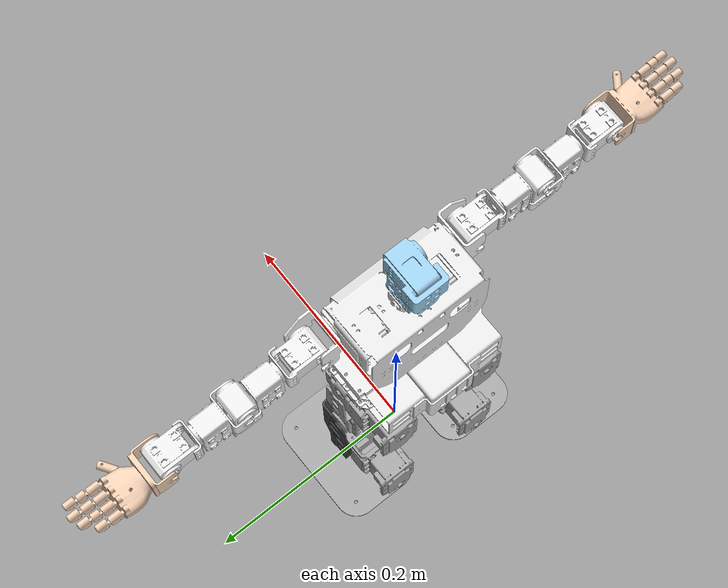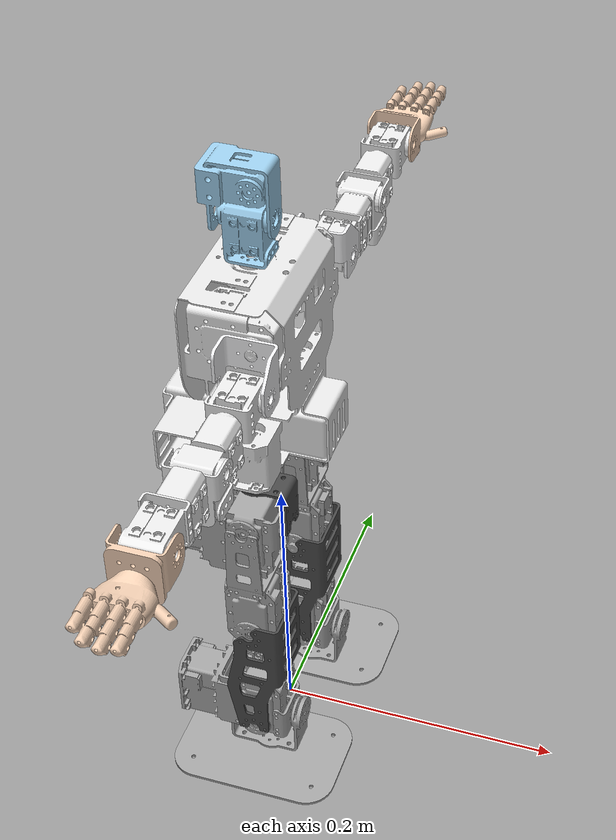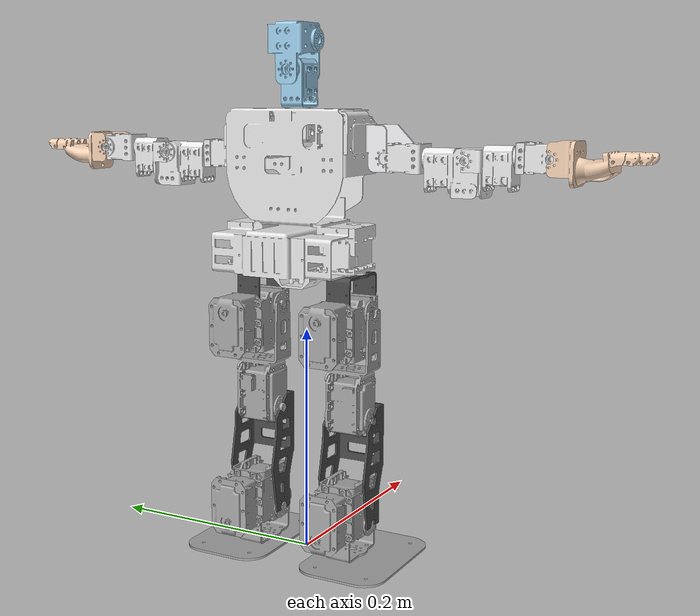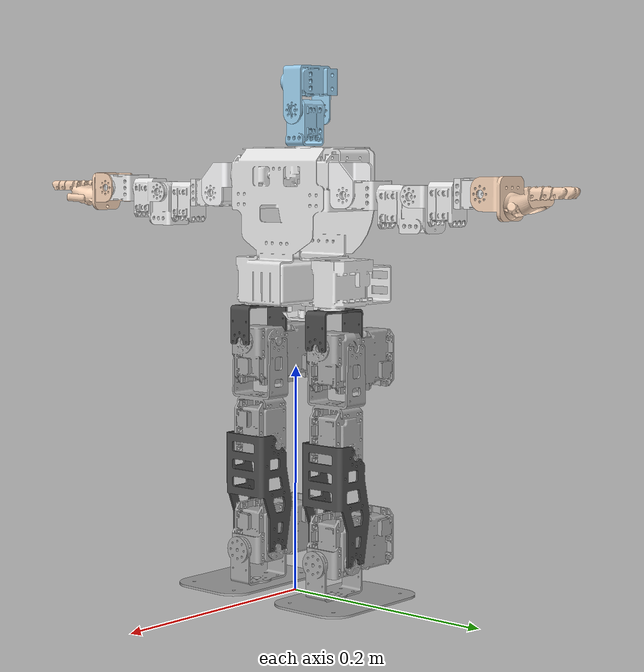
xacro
<?xml version="1.0"?>
<robot xmlns:xacro="http://www.ros.org/wiki/xacro" name="alfan_2025">
    <xacro:arg name="initial_positions_file" default="initial_positions.yaml" />

    <!-- Import alfan_2025 urdf file -->
    <xacro:include filename="$(find alfan_robot_description)/urdf/alfan.urdf" />

    <!-- Import control_xacro -->
    <xacro:include filename="alfan_2025.ros2_control.xacro" />

    <xacro:alfan_2025_ros2_control name="GazeboROS2" initial_positions_file="$(arg initial_positions_file)"/>

    <gazebo>
        <plugin filename="ign_ros2_control-system" name="ign_ros2_control::IgnitionROS2ControlPlugin">
            <parameters>$(find alfan_hardware)/config/ros2_controllers.yaml</parameters>
        </plugin>
    </gazebo>

    <gazebo reference="l_foot">
        <mu1>100.0</mu1>
        <mu2>100.0</mu2>
        <kp>1000000.0</kp>
        <kd>100.0</kd>
        <minDepth>0.001</minDepth>
    </gazebo>

    <gazebo reference="r_foot">
        <mu1>100.0</mu1>
        <mu2>100.0</mu2>
        <kp>1000000.0</kp>
        <kd>100.0</kd>
        <minDepth>0.001</minDepth>
    </gazebo>

    <gazebo reference="l_palm">
        <mu1>0.6</mu1>
        <mu2>0.6</mu2>
        <kp>1000000.0</kp>
        <kd>100.0</kd>
        <minDepth>0.0001</minDepth>
        <maxVel>0.01</maxVel>
    </gazebo>

    <gazebo reference="r_palm">
        <mu1>0.6</mu1>
        <mu2>0.6</mu2>
        <kp>1000000.0</kp>
        <kd>100.0</kd>
        <minDepth>0.0001</minDepth>
        <maxVel>0.01</maxVel>
    </gazebo>

</robot>

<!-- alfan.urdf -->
<!-- Generated using onshape-to-robot -->
<!-- Onshape https://cad.onshape.com/documents/8cbf7271d634c29c967e8abb/w/69ee037ca6e75b04c62f3a0c/e/52ef5a2e9e2916901e209032 -->
<robot name="alfan_2025">
  <!-- Dummy base link -->
  <link name="base_link"></link>

  <!-- Link body -->
  <link name="body">
    <inertial>
      <origin xyz="-0.0105931 4.03604e-06 0.306267" rpy="0 0 0"/>
      <mass value="0.757108"/>
      <inertia ixx="0.0023612" ixy="1.696e-07" ixz="-0.0001496" iyy="0.0020347" iyz="9.9759e-08" izz="0.001299"/>
    </inertial>
    <!-- Part body -->
    <collision>
      <origin xyz="-0.01425 7.7336e-05 0.272447" rpy="-1.5708 -3.07442e-13 -1.5708"/>
      <geometry>
        <box size="0.124687 0.0458965 0.113"/>
      </geometry>
    </collision>
    <collision>
      <origin xyz="-0.00707247 -1.8864e-05 0.343255" rpy="3.07442e-13 -1.17186e-15 3.14159"/>
      <geometry>
        <box size="0.0648476 0.123854 0.097"/>
      </geometry>
    </collision>
    <visual>
      <origin xyz="-0.00672007 3.60385e-08 0.297149" rpy="-3.07442e-13 1.17186e-15 -2.77556e-17"/>
      <geometry>
        <mesh filename="file://$(find alfan_robot_description)/meshes/body.stl"/>
      </geometry>
      <material name="body_material">
        <color rgba="0.901961 0.901961 0.901961 1"/>
      </material>
    </visual>
  </link>
  <!-- Dummy Joint -->
  <joint name="base_link_to_body" type="fixed">
    <parent link="base_link"/>
    <child link="body"/>
    <origin xyz="0 0 0" rpy="0 0 0"/>
  </joint>
  <!-- Link hip_connector -->
  <link name="hip_connector">
    <inertial>
      <origin xyz="-0.00277951 7.80388e-18 -0.00995004" rpy="0 0 0"/>
      <mass value="0.0123973"/>
      <inertia ixx="1.86779e-06" ixy="-3.87301e-38" ixz="3.27394e-09" iyy="6.45145e-06" iyz="-1.52389e-41" izz="5.69507e-06"/>
    </inertial>
    <!-- Part hip_connector -->
    <collision>
      <origin xyz="-0.0028777 -3.54e-05 -0.0175" rpy="0 -0 -4.65462e-33"/>
      <geometry>
        <box size="0.0506482 0.0270708 0.035"/>
      </geometry>
    </collision>
    <visual>
      <origin xyz="-0.00275 1.38778e-17 0" rpy="0 -0 -4.65462e-33"/>
      <geometry>
        <mesh filename="file://$(find alfan_robot_description)/meshes/hip_connector.stl"/>
      </geometry>
      <material name="hip_connector_material">
        <color rgba="0.286275 0.286275 0.286275 1"/>
      </material>
    </visual>
  </link>
  <!-- Link l_hip_mx28_block -->
  <link name="l_hip_mx28_block">
    <inertial>
      <origin xyz="-0.00016 -0.011201 0.00376704" rpy="0 0 0"/>
      <mass value="0.162255"/>
      <inertia ixx="0.0001198" ixy="5.23097e-07" ixz="1.8713e-07" iyy="0.000107" iyz="-3.18268e-06" izz="4.56093e-05"/>
    </inertial>
    <!-- Part l_hip_mx28_block -->
    <collision>
      <origin xyz="-0.00187095 -0.0135 0.00372199" rpy="-1.5708 -1.5708 0"/>
      <geometry>
        <box size="0.0859449 0.0423941 0.051"/>
      </geometry>
    </collision>
    <visual>
      <origin xyz="4.28609e-13 -0.033 0.02305" rpy="-1.5708 -1.5708 0"/>
      <geometry>
        <mesh filename="file://$(find alfan_robot_description)/meshes/l_hip_mx28_block.stl"/>
      </geometry>
      <material name="l_hip_mx28_block_material">
        <color rgba="0.647059 0.647059 0.647059 1"/>
      </material>
    </visual>
  </link>
  <!-- Link l_hip_to_knee -->
  <link name="l_hip_to_knee">
    <inertial>
      <origin xyz="-0.0729973 -3e-05 0.020308" rpy="0 0 0"/>
      <mass value="0.095285"/>
      <inertia ixx="2.11931e-05" ixy="5.3641e-08" ixz="-7.07684e-07" iyy="6.64994e-05" iyz="5.8e-10" izz="5.7043e-05"/>
    </inertial>
    <!-- Part l_hip_to_knee -->
    <collision>
      <origin xyz="-0.0518373 -3.65e-05 0.0204614" rpy="-1.5708 -4.02932e-25 1.5708"/>
      <geometry>
        <box size="0.03584 0.0455282 0.108"/>
      </geometry>
    </collision>
    <visual>
      <origin xyz="-0.105837 -2.3849e-12 0.019725" rpy="1.5708 4.06981e-33 1.5708"/>
      <geometry>
        <mesh filename="file://$(find alfan_robot_description)/meshes/l_hip_to_knee.stl"/>
      </geometry>
      <material name="l_hip_to_knee_material">
        <color rgba="0.647059 0.647059 0.647059 1"/>
      </material>
    </visual>
  </link>
  <!-- Link tibia -->
  <link name="tibia">
    <inertial>
      <origin xyz="-0.0358486 0.00695075 0.0205001" rpy="0 0 0"/>
      <mass value="0.0333977"/>
      <inertia ixx="1.79007e-05" ixy="-5.47445e-06" ixz="2.13089e-11" iyy="3.9967e-05" iyz="1.43552e-11" izz="3.1768e-05"/>
    </inertial>
    <!-- Part tibia -->
    <collision>
      <origin xyz="-0.042873 0.00195923 0.0205" rpy="3.14159 2.91878e-33 -1.5708"/>
      <geometry>
        <box size="0.039678 0.105746 0.045"/>
      </geometry>
    </collision>
    <visual>
      <origin xyz="0.01 0.0217982 -0.002" rpy="1.5708 -2.91878e-33 1.5708"/>
      <geometry>
        <mesh filename="file://$(find alfan_robot_description)/meshes/tibia.stl"/>
      </geometry>
      <material name="tibia_material">
        <color rgba="0.286275 0.286275 0.286275 1"/>
      </material>
    </visual>
  </link>
  <!-- Link l_ankle_mx28_block -->
  <link name="l_ankle_mx28_block">
    <inertial>
      <origin xyz="0.011201 -0.019283 0.019884" rpy="0 0 0"/>
      <mass value="0.162255"/>
      <inertia ixx="0.000107" ixy="3.18264e-06" ixz="-5.38414e-07" iyy="4.56127e-05" iyz="5.20429e-07" izz="0.0001198"/>
    </inertial>
    <!-- Part l_ankle_mx28_block -->
    <collision>
      <origin xyz="0.0135 -0.0203893 0.018783" rpy="-1.5708 -9.90737e-33 1.5708"/>
      <geometry>
        <box size="0.0840214 0.0432827 0.051"/>
      </geometry>
    </collision>
    <visual>
      <origin xyz="-0.012 1.32359e-15 0.019175" rpy="1.5708 -9.90737e-33 1.5708"/>
      <geometry>
        <mesh filename="file://$(find alfan_robot_description)/meshes/l_ankle_mx28_block.stl"/>
      </geometry>
      <material name="l_ankle_mx28_block_material">
        <color rgba="0.647059 0.647059 0.647059 1"/>
      </material>
    </visual>
  </link>
  <!-- Link l_foot -->
  <link name="l_foot">
    <inertial>
      <origin xyz="0.010143 -0.0297122 0.026035" rpy="0 0 0"/>
      <mass value="0.063842"/>
      <inertia ixx="6.67616e-05" ixy="1.99819e-06" ixz="5.08308e-07" iyy="9.01027e-05" iyz="-1.50019e-06" izz="3.19302e-05"/>
    </inertial>
    <!-- Part l_foot -->
    <collision>
      <origin xyz="-0.0001003 -0.0100062 0.027" rpy="3.14159 1.74306e-33 8.49968e-30"/>
      <geometry>
        <box size="0.0221666 0.0438909 0.054"/>
      </geometry>
    </collision>
    <collision>
      <origin xyz="0.0129662 -0.0322982 0.0252505" rpy="1.5708 -1.5708 0"/>
      <geometry>
        <box size="0.120001 0.0800676 0.003"/>
      </geometry>
    </collision>
    <visual>
      <origin xyz="0.013 -0.0317982 0.02525" rpy="-1.5708 -1.5708 0"/>
      <geometry>
        <mesh filename="file://$(find alfan_robot_description)/meshes/l_foot.stl"/>
      </geometry>
      <material name="l_foot_material">
        <color rgba="0.647059 0.647059 0.647059 1"/>
      </material>
    </visual>
  </link>
  <!-- Joint from l_ankle_mx28_block to l_foot -->
  <joint name="l_ankle_roll" type="revolute">
    <origin xyz="3.07393e-14 -0.02305 0.01995" rpy="-1.5708 -1.5708 0"/>
    <parent link="l_ankle_mx28_block"/>
    <child link="l_foot"/>
    <axis xyz="0 0 1"/>
    <limit effort="10" velocity="10" lower="-0.375246" upper="0.375246"/>
  </joint>
  <!-- Joint from tibia to l_ankle_mx28_block -->
  <joint name="l_ankle_pitch" type="revolute">
    <origin xyz="-0.093 4.21538e-16 1.04083e-17" rpy="2.06189e-29 -1.51461e-28 5.55112e-17"/>
    <parent link="tibia"/>
    <child link="l_ankle_mx28_block"/>
    <axis xyz="0 0 1"/>
    <limit effort="10" velocity="10" lower="-1.5708" upper="1.22173"/>
  </joint>
  <!-- Joint from l_hip_to_knee to tibia -->
  <joint name="l_knee" type="revolute">
    <origin xyz="-0.0938373 -2.02966e-12 0.000550036" rpy="1.01253e-24 -1.62064e-26 5.55112e-17"/>
    <parent link="l_hip_to_knee"/>
    <child link="tibia"/>
    <axis xyz="0 0 1"/>
    <limit effort="10" velocity="10" lower="0" upper="2.61799"/>
  </joint>
  <!-- Joint from l_hip_mx28_block to l_hip_to_knee -->
  <joint name="l_hip_pitch" type="revolute">
    <origin xyz="-0.01995 -6.07486e-13 0.02305" rpy="1.5708 6.4443e-19 1.5708"/>
    <parent link="l_hip_mx28_block"/>
    <child link="l_hip_to_knee"/>
    <axis xyz="0 0 1"/>
    <limit effort="10" velocity="10" lower="-2.35619" upper="0.497419"/>
  </joint>
  <!-- Joint from hip_connector to l_hip_mx28_block -->
  <joint name="l_hip_roll" type="revolute">
    <origin xyz="-0.028 0 -0.0317982" rpy="1.5708 -0 1.5708"/>
    <parent link="hip_connector"/>
    <child link="l_hip_mx28_block"/>
    <axis xyz="0 0 1"/>
    <limit effort="10" velocity="10" lower="-0.375246" upper="0.375246"/>
  </joint>
  <!-- Joint from body to hip_connector -->
  <joint name="l_hip_yaw" type="revolute">
    <origin xyz="0.00275 0.0444 0.252434" rpy="-3.07436e-13 1.17478e-15 -1.33488e-16"/>
    <parent link="body"/>
    <child link="hip_connector"/>
    <axis xyz="0 0 1"/>
    <limit effort="10" velocity="10" lower="-0.523599" upper="0.523599"/>
  </joint>
  <!-- Link hip_connector_2 -->
  <link name="hip_connector_2">
    <inertial>
      <origin xyz="-0.00277951 7.80388e-18 -0.00995004" rpy="0 0 0"/>
      <mass value="0.0123973"/>
      <inertia ixx="1.86779e-06" ixy="-2.13752e-41" ixz="3.27394e-09" iyy="6.45145e-06" iyz="1.52686e-44" izz="5.69507e-06"/>
    </inertial>
    <!-- Part hip_connector_2 -->
    <collision>
      <origin xyz="-0.0028777 -3.54e-05 -0.0175" rpy="0 -0 4.66366e-36"/>
      <geometry>
        <box size="0.0506482 0.0270708 0.035"/>
      </geometry>
    </collision>
    <visual>
      <origin xyz="-0.00275 1.38778e-17 0" rpy="0 -0 4.66366e-36"/>
      <geometry>
        <mesh filename="file://$(find alfan_robot_description)/meshes/hip_connector.stl"/>
      </geometry>
      <material name="hip_connector_2_material">
        <color rgba="0.286275 0.286275 0.286275 1"/>
      </material>
    </visual>
  </link>
  <!-- Link r_hip_mx28_block -->
  <link name="r_hip_mx28_block">
    <inertial>
      <origin xyz="6.6e-05 -0.011201 0.00376704" rpy="0 0 0"/>
      <mass value="0.162255"/>
      <inertia ixx="0.0001198" ixy="-5.38417e-07" ixz="-5.20431e-07" iyy="0.000107" iyz="-3.18268e-06" izz="4.56127e-05"/>
    </inertial>
    <!-- Part r_hip_mx28_block -->
    <collision>
      <origin xyz="0.00125805 -0.0135 0.00381494" rpy="-1.5708 -1.5708 0"/>
      <geometry>
        <box size="0.086166 0.0433161 0.051"/>
      </geometry>
    </collision>
    <visual>
      <origin xyz="3.29597e-15 -0.033 0.02305" rpy="-1.5708 -1.5708 0"/>
      <geometry>
        <mesh filename="file://$(find alfan_robot_description)/meshes/r_hip_mx28_block.stl"/>
      </geometry>
      <material name="r_hip_mx28_block_material">
        <color rgba="0.647059 0.647059 0.647059 1"/>
      </material>
    </visual>
  </link>
  <!-- Link r_hip_to_knee -->
  <link name="r_hip_to_knee">
    <inertial>
      <origin xyz="-0.0729973 -3e-05 -0.020307" rpy="0 0 0"/>
      <mass value="0.095285"/>
      <inertia ixx="2.11931e-05" ixy="5.3642e-08" ixz="7.07509e-07" iyy="6.64994e-05" iyz="-5.07e-10" izz="5.7043e-05"/>
    </inertial>
    <!-- Part r_hip_to_knee -->
    <collision>
      <origin xyz="-0.0518373 -2.43e-05 -0.0202786" rpy="-1.5708 -1.55463e-36 1.5708"/>
      <geometry>
        <box size="0.03584 0.0455282 0.108"/>
      </geometry>
    </collision>
    <visual>
      <origin xyz="-0.105837 3.20526e-13 -0.019725" rpy="1.5708 -1.55463e-36 1.5708"/>
      <geometry>
        <mesh filename="file://$(find alfan_robot_description)/meshes/r_hip_to_knee.stl"/>
      </geometry>
      <material name="r_hip_to_knee_material">
        <color rgba="0.647059 0.647059 0.647059 1"/>
      </material>
    </visual>
  </link>
  <!-- Link tibia_2 -->
  <link name="tibia_2">
    <inertial>
      <origin xyz="-0.0358486 0.00695075 -0.0204999" rpy="0 0 0"/>
      <mass value="0.0333977"/>
      <inertia ixx="1.79007e-05" ixy="-5.47445e-06" ixz="2.13089e-11" iyy="3.9967e-05" iyz="1.43552e-11" izz="3.1768e-05"/>
    </inertial>
    <!-- Part tibia_2 -->
    <collision>
      <origin xyz="-0.042873 0.00195923 -0.0205" rpy="3.14159 1.55484e-36 -1.5708"/>
      <geometry>
        <box size="0.039678 0.105746 0.045"/>
      </geometry>
    </collision>
    <visual>
      <origin xyz="0.01 0.0217982 -0.043" rpy="1.5708 -1.55484e-36 1.5708"/>
      <geometry>
        <mesh filename="file://$(find alfan_robot_description)/meshes/tibia.stl"/>
      </geometry>
      <material name="tibia_2_material">
        <color rgba="0.286275 0.286275 0.286275 1"/>
      </material>
    </visual>
  </link>
  <!-- Link r_ankle_mx28_block -->
  <link name="r_ankle_mx28_block">
    <inertial>
      <origin xyz="0.011201 -0.019283 -0.01979" rpy="0 0 0"/>
      <mass value="0.162255"/>
      <inertia ixx="0.000107" ixy="3.18264e-06" ixz="5.231e-07" iyy="4.56093e-05" iyz="-1.8713e-07" izz="0.0001198"/>
    </inertial>
    <!-- Part r_ankle_mx28_block -->
    <collision>
      <origin xyz="0.0135 -0.0202893 -0.0185994" rpy="-1.5708 -1.55505e-36 1.5708"/>
      <geometry>
        <box size="0.0840214 0.0432827 0.051"/>
      </geometry>
    </collision>
    <visual>
      <origin xyz="-0.012 -1.76395e-14 -0.019175" rpy="1.5708 -1.55505e-36 1.5708"/>
      <geometry>
        <mesh filename="file://$(find alfan_robot_description)/meshes/r_ankle_mx28_block.stl"/>
      </geometry>
      <material name="r_ankle_mx28_block_material">
        <color rgba="0.647059 0.647059 0.647059 1"/>
      </material>
    </visual>
  </link>
  <!-- Link r_foot -->
  <link name="r_foot">
    <inertial>
      <origin xyz="-0.010143 -0.0297122 0.026035" rpy="0 0 0"/>
      <mass value="0.063842"/>
      <inertia ixx="6.67616e-05" ixy="-1.99819e-06" ixz="-5.08308e-07" iyy="9.01027e-05" iyz="-1.50019e-06" izz="3.19302e-05"/>
    </inertial>
    <!-- Part r_foot -->
    <collision>
      <origin xyz="-0.00010026 -0.00985348 0.027" rpy="-3.14159 -1.56879e-36 1.70934e-29"/>
      <geometry>
        <box size="0.0221666 0.0438909 0.054"/>
      </geometry>
    </collision>
    <collision>
      <origin xyz="-0.0130338 -0.0322982 0.0252494" rpy="1.5708 -1.5708 0"/>
      <geometry>
        <box size="0.120001 0.0800676 0.003"/>
      </geometry>
    </collision>
    <visual>
      <origin xyz="-0.013 -0.0337982 0.02525" rpy="-1.5708 -1.5708 0"/>
      <geometry>
        <mesh filename="file://$(find alfan_robot_description)/meshes/r_foot.stl"/>
      </geometry>
      <material name="r_foot_material">
        <color rgba="0.647059 0.647059 0.647059 1"/>
      </material>
    </visual>
  </link>
  <!-- Joint from r_ankle_mx28_block to r_foot -->
  <joint name="r_ankle_roll" type="revolute">
    <origin xyz="6.0292e-14 -0.02305 -0.01995" rpy="-1.5708 -1.5708 0"/>
    <parent link="r_ankle_mx28_block"/>
    <child link="r_foot"/>
    <axis xyz="0 0 1"/>
    <limit effort="10" velocity="10" lower="-0.375246" upper="0.375246"/>
  </joint>
  <!-- Joint from tibia_2 to r_ankle_mx28_block -->
  <joint name="r_ankle_pitch" type="revolute">
    <origin xyz="-0.093 -3.90313e-18 -3.46945e-18" rpy="1.55505e-36 -0 6.88016e-28"/>
    <parent link="tibia_2"/>
    <child link="r_ankle_mx28_block"/>
    <axis xyz="0 0 1"/>
    <limit effort="10" velocity="10" lower="-1.5708" upper="1.22173"/>
  </joint>
  <!-- Joint from r_hip_to_knee to tibia_2 -->
  <joint name="r_knee" type="revolute">
    <origin xyz="-0.0938373 3.16515e-13 -0.000550036" rpy="1.55484e-36 -0 6.88002e-28"/>
    <parent link="r_hip_to_knee"/>
    <child link="tibia_2"/>
    <axis xyz="0 0 1"/>
    <limit effort="10" velocity="10" lower="0" upper="2.61799"/>
  </joint>
  <!-- Joint from r_hip_mx28_block to r_hip_to_knee -->
  <joint name="r_hip_pitch" type="revolute">
    <origin xyz="0.01995 1.33227e-15 0.02305" rpy="1.5708 -6.88016e-28 1.5708"/>
    <parent link="r_hip_mx28_block"/>
    <child link="r_hip_to_knee"/>
    <axis xyz="0 0 1"/>
    <limit effort="10" velocity="10" lower="-2.35619" upper="0.497419"/>
  </joint>
  <!-- Joint from hip_connector_2 to r_hip_mx28_block -->
  <joint name="r_hip_roll" type="revolute">
    <origin xyz="-0.028 -6.93889e-18 -0.0317982" rpy="1.5708 -0 1.5708"/>
    <parent link="hip_connector_2"/>
    <child link="r_hip_mx28_block"/>
    <axis xyz="0 0 1"/>
    <limit effort="10" velocity="10" lower="-0.375246" upper="0.375246"/>
  </joint>
  <!-- Joint from body to hip_connector_2 -->
  <joint name="r_hip_yaw" type="revolute">
    <origin xyz="0.00275 -0.0444 0.252434" rpy="-3.07442e-13 1.51693e-23 -2.77556e-17"/>
    <parent link="body"/>
    <child link="hip_connector_2"/>
    <axis xyz="0 0 1"/>
    <limit effort="10" velocity="10" lower="-0.523599" upper="0.523599"/>
  </joint>
  <!-- Link neck -->
  <link name="neck">
    <inertial>
      <origin xyz="0.00136 -8.88178e-18 0.022729" rpy="0 0 0"/>
      <mass value="0.029997"/>
      <inertia ixx="4.71486e-06" ixy="1.22882e-38" ixz="-5.82106e-07" iyy="6.98074e-06" iyz="4.59034e-40" izz="4.23785e-06"/>
    </inertial>
    <!-- Part neck -->
    <collision>
      <origin xyz="-0.0035 1.68e-05 0.0199735" rpy="1.5708 -0 1.5708"/>
      <geometry>
        <box size="0.0240336 0.039947 0.031"/>
      </geometry>
    </collision>
    <visual>
      <origin xyz="2.60209e-17 -8.88178e-18 0" rpy="0 -0 -7.88575e-34"/>
      <geometry>
        <mesh filename="file://$(find alfan_robot_description)/meshes/neck.stl"/>
      </geometry>
      <material name="neck_material">
        <color rgba="0.615686 0.811765 0.929412 1"/>
      </material>
    </visual>
  </link>
  <!-- Link head_to_face -->
  <link name="head_to_face">
    <inertial>
      <origin xyz="-5.9e-05 0.023127 -0.019603" rpy="0 0 0"/>
      <mass value="0.035939"/>
      <inertia ixx="1.1264e-05" ixy="2.909e-09" ixz="2.7952e-08" iyy="9.50806e-06" iyz="-7.907e-09" izz="6.36767e-06"/>
    </inertial>
    <!-- Part head_to_face -->
    <collision>
      <origin xyz="6e-06 0.01326 -0.02" rpy="0 -2.29291e-33 0"/>
      <geometry>
        <box size="0.032099 0.0505201 0.044"/>
      </geometry>
    </collision>
    <visual>
      <origin xyz="-4.75175e-16 0.01125 0.002" rpy="-1.5708 -1.5708 0"/>
      <geometry>
        <mesh filename="file://$(find alfan_robot_description)/meshes/head_to_face.stl"/>
      </geometry>
      <material name="head_to_face_material">
        <color rgba="0.615686 0.811765 0.929412 1"/>
      </material>
    </visual>
  </link>
  <!-- Joint from neck to head_to_face -->
  <joint name="head_roll" type="revolute">
    <origin xyz="0.015 -1.15463e-16 0.03092" rpy="1.5708 -0 1.5708"/>
    <parent link="neck"/>
    <child link="head_to_face"/>
    <axis xyz="0 0 1"/>
    <limit effort="10" velocity="10" lower="-0.785398" upper="0.785398"/>
  </joint>
  <!-- Joint from body to neck -->
  <joint name="head_yaw" type="revolute">
    <origin xyz="-0.011357 3.60385e-08 0.392755" rpy="-3.07442e-13 1.17186e-15 -2.77556e-17"/>
    <parent link="body"/>
    <child link="neck"/>
    <axis xyz="0 0 1"/>
    <limit effort="10" velocity="10" lower="-0.523599" upper="0.523599"/>
  </joint>
  <!-- Link l_shoulder_connector -->
  <link name="l_shoulder_connector">
    <inertial>
      <origin xyz="-0.00492402 0.00182592 0.00882478" rpy="0 0 0"/>
      <mass value="0.0111142"/>
      <inertia ixx="3.10963e-06" ixy="1.67756e-07" ixz="2.99732e-07" iyy="1.7787e-06" iyz="-2.9848e-07" izz="3.55567e-06"/>
    </inertial>
    <!-- Part l_shoulder_connector -->
    <collision>
      <origin xyz="-0.0079632 -5e-05 0.0144362" rpy="-1.5708 -1.5708 0"/>
      <geometry>
        <box size="0.0290724 0.0380736 0.036"/>
      </geometry>
    </collision>
    <visual>
      <origin xyz="0 -0.002 0.002" rpy="1.5708 2.35489e-33 1.5708"/>
      <geometry>
        <mesh filename="file://$(find alfan_robot_description)/meshes/l_shoulder_connector.stl"/>
      </geometry>
      <material name="l_shoulder_connector_material">
        <color rgba="0.956863 0.956863 0.964706 1"/>
      </material>
    </visual>
  </link>
  <!-- Link l_arm_pitch -->
  <link name="l_arm_pitch">
    <inertial>
      <origin xyz="0.010014 -5.55112e-17 -0.014552" rpy="0 0 0"/>
      <mass value="0.020676"/>
      <inertia ixx="2.07658e-06" ixy="-4.13326e-35" ixz="1.42906e-07" iyy="3.83423e-06" iyz="1.42553e-36" izz="3.37951e-06"/>
    </inertial>
    <!-- Part l_arm_pitch -->
    <collision>
      <origin xyz="0.01 1.705e-05 -0.0143061" rpy="-5.52203e-30 1.5708 0"/>
      <geometry>
        <box size="0.0286122 0.0240341 0.038"/>
      </geometry>
    </collision>
    <visual>
      <origin xyz="0 -5.55112e-17 0" rpy="-1.5708 -1.5708 0"/>
      <geometry>
        <mesh filename="file://$(find alfan_robot_description)/meshes/l_arm_pitch.stl"/>
      </geometry>
      <material name="l_arm_pitch_material">
        <color rgba="0.917647 0.917647 0.917647 1"/>
      </material>
    </visual>
  </link>
  <!-- Link l_elbow_block -->
  <link name="l_elbow_block">
    <inertial>
      <origin xyz="-0.007839 -0.000148 0.027949" rpy="0 0 0"/>
      <mass value="0.040594"/>
      <inertia ixx="9.85967e-06" ixy="-1.732e-08" ixz="3.73451e-07" iyy="1.1591e-05" iyz="7.2352e-08" izz="6.06525e-06"/>
    </inertial>
    <!-- Part l_elbow_block -->
    <collision>
      <origin xyz="-0.0105 -0.0011352 0.0260343" rpy="1.5708 -6.7639e-35 1.5708"/>
      <geometry>
        <box size="0.0312596 0.0520685 0.039"/>
      </geometry>
    </collision>
    <visual>
      <origin xyz="5.55112e-17 0 0" rpy="1.5708 -6.7639e-35 1.5708"/>
      <geometry>
        <mesh filename="file://$(find alfan_robot_description)/meshes/l_elbow_block.stl"/>
      </geometry>
      <material name="l_elbow_block_material">
        <color rgba="0.917647 0.917647 0.917647 1"/>
      </material>
    </visual>
  </link>
  <!-- Link l_wrist_roll -->
  <link name="l_wrist_roll">
    <inertial>
      <origin xyz="0.022352 -0.004532 -0.015165" rpy="0 0 0"/>
      <mass value="0.023692"/>
      <inertia ixx="3.64251e-06" ixy="-1.77956e-07" ixz="1.72916e-07" iyy="3.76317e-06" iyz="-3.0555e-08" izz="4.46509e-06"/>
    </inertial>
    <!-- Part l_wrist_roll -->
    <collision>
      <origin xyz="0.0159225 -0.009 -0.0154574" rpy="-1.5708 -1.5708 0"/>
      <geometry>
        <box size="0.0340473 0.0499962 0.042"/>
      </geometry>
    </collision>
    <visual>
      <origin xyz="0.026 0.012 -0.01545" rpy="-1.5708 -1.5708 0"/>
      <geometry>
        <mesh filename="file://$(find alfan_robot_description)/meshes/l_wrist_roll.stl"/>
      </geometry>
      <material name="l_wrist_roll_material">
        <color rgba="0.917647 0.917647 0.917647 1"/>
      </material>
    </visual>
  </link>
  <!-- Link l_wrist_pitch -->
  <link name="l_wrist_pitch">
    <inertial>
      <origin xyz="-8.7777e-16 0.000948 0.018986" rpy="0 0 0"/>
      <mass value="0.020676"/>
      <inertia ixx="3.83423e-06" ixy="-2.49645e-36" ixz="3.2453e-35" iyy="3.37951e-06" iyz="-1.42906e-07" izz="2.07658e-06"/>
    </inertial>
    <!-- Part l_wrist_pitch -->
    <collision>
      <origin xyz="1.705e-05 -0.00015245 0.019" rpy="-3.14159 8.86898e-33 1.5708"/>
      <geometry>
        <box size="0.0312241 0.0240341 0.038"/>
      </geometry>
    </collision>
    <visual>
      <origin xyz="0.0105 0.0005 0.02" rpy="1.5708 8.86898e-33 1.5708"/>
      <geometry>
        <mesh filename="file://$(find alfan_robot_description)/meshes/l_wrist_pitch.stl"/>
      </geometry>
      <material name="l_wrist_pitch_material">
        <color rgba="0.917647 0.917647 0.917647 1"/>
      </material>
    </visual>
  </link>
  <!-- Link l_palm -->
  <link name="l_palm">
    <inertial>
      <origin xyz="0.028438 -0.00286142 -0.013578" rpy="0 0 0"/>
      <mass value="0.024199"/>
      <inertia ixx="4.40532e-06" ixy="-2.07142e-07" ixz="-1.64935e-07" iyy="1.14535e-05" iyz="1.47738e-07" izz="9.62956e-06"/>
    </inertial>
    <!-- Part l_palm -->
    <collision>
      <origin xyz="0.034 -0.00800591 -0.0152979" rpy="3.14159 1.5708 0"/>
      <geometry>
        <box size="0.0374329 0.0262008 0.086"/>
      </geometry>
    </collision>
    <visual>
      <origin xyz="0.017247 0.0139456 -0.01545" rpy="-1.5708 -1.5708 0"/>
      <geometry>
        <mesh filename="file://$(find alfan_robot_description)/meshes/l_palm.stl"/>
      </geometry>
      <material name="l_palm_material">
        <color rgba="0.952941 0.815686 0.705882 1"/>
      </material>
    </visual>
  </link>
  <!-- Joint from l_wrist_pitch to l_palm -->
  <joint name="l_hand_36" type="revolute">
    <origin xyz="-9.4369e-16 0.0154 0.029" rpy="-1.5708 -1.5708 0"/>
    <parent link="l_wrist_pitch"/>
    <child link="l_palm"/>
    <axis xyz="0 0 1"/>
    <limit effort="10" velocity="10" lower="-1.7017" upper="1.7017"/>
  </joint>
  <!-- Joint from l_wrist_roll to l_wrist_pitch -->
  <joint name="l_hand_35" type="revolute">
    <origin xyz="0.0409 0.003 -0.01545" rpy="1.5708 -6.82466e-16 1.5708"/>
    <parent link="l_wrist_roll"/>
    <child link="l_wrist_pitch"/>
    <axis xyz="0 0 1"/>
    <limit effort="10" velocity="10" lower="-3.14159" upper="3.14159"/>
  </joint>
  <!-- Joint from l_elbow_block to l_wrist_roll -->
  <joint name="l_hand_34" type="revolute">
    <origin xyz="3.10862e-15 0.0144 0.04" rpy="-1.5708 -1.5708 0"/>
    <parent link="l_elbow_block"/>
    <child link="l_wrist_roll"/>
    <axis xyz="0 0 1"/>
    <limit effort="10" velocity="10" lower="0" upper="2.0944"/>
  </joint>
  <!-- Joint from l_arm_pitch to l_elbow_block -->
  <joint name="l_hand_33" type="revolute">
    <origin xyz="0.029 -5.67324e-14 -0.0145" rpy="1.5708 3.4138e-28 1.5708"/>
    <parent link="l_arm_pitch"/>
    <child link="l_elbow_block"/>
    <axis xyz="0 0 1"/>
    <limit effort="10" velocity="10" lower="-3.14159" upper="3.14159"/>
  </joint>
  <!-- Joint from l_shoulder_connector to l_arm_pitch -->
  <joint name="l_hand_32" type="revolute">
    <origin xyz="-0.016 0.01595 0.018" rpy="-1.5708 -1.5708 0"/>
    <parent link="l_shoulder_connector"/>
    <child link="l_arm_pitch"/>
    <axis xyz="0 0 1"/>
    <limit effort="10" velocity="10" lower="-2.61799" upper="1.5708"/>
  </joint>
  <!-- Joint from body to l_shoulder_connector -->
  <joint name="l_hand_31" type="revolute">
    <origin xyz="0.00996904 0.058983 0.367555" rpy="-1.5708 -1.5708 0"/>
    <parent link="body"/>
    <child link="l_shoulder_connector"/>
    <axis xyz="0 0 1"/>
    <limit effort="10" velocity="10" lower="-3.14159" upper="3.14159"/>
  </joint>
  <!-- Link r_shoulder_connector -->
  <link name="r_shoulder_connector">
    <inertial>
      <origin xyz="-0.00492402 0.00182592 -0.00882478" rpy="0 0 0"/>
      <mass value="0.0111142"/>
      <inertia ixx="3.10963e-06" ixy="1.67756e-07" ixz="-2.99732e-07" iyy="1.7787e-06" iyz="2.9848e-07" izz="3.55567e-06"/>
    </inertial>
    <!-- Part r_shoulder_connector -->
    <collision>
      <origin xyz="-0.00804575 -5e-05 -0.0145381" rpy="-1.5708 1.5708 0"/>
      <geometry>
        <box size="0.0290761 0.0380915 0.036"/>
      </geometry>
    </collision>
    <visual>
      <origin xyz="0 0 0" rpy="1.5708 5.98425e-42 1.5708"/>
      <geometry>
        <mesh filename="file://$(find alfan_robot_description)/meshes/r_shoulder_connector.stl"/>
      </geometry>
      <material name="r_shoulder_connector_material">
        <color rgba="0.956863 0.956863 0.964706 1"/>
      </material>
    </visual>
  </link>
  <!-- Link r_arm_pitch -->
  <link name="r_arm_pitch">
    <inertial>
      <origin xyz="-0.010014 0 -0.014552" rpy="0 0 0"/>
      <mass value="0.020676"/>
      <inertia ixx="2.07658e-06" ixy="0" ixz="-1.42906e-07" iyy="3.83423e-06" iyz="0" izz="3.37951e-06"/>
    </inertial>
    <!-- Part r_arm_pitch -->
    <collision>
      <origin xyz="-0.01 1.705e-05 -0.0142939" rpy="-0 -1.5708 0"/>
      <geometry>
        <box size="0.0286122 0.0240341 0.038"/>
      </geometry>
    </collision>
    <visual>
      <origin xyz="0 0 0" rpy="-1.5708 -1.5708 0"/>
      <geometry>
        <mesh filename="file://$(find alfan_robot_description)/meshes/r_arm_pitch.stl"/>
      </geometry>
      <material name="r_arm_pitch_material">
        <color rgba="0.917647 0.917647 0.917647 1"/>
      </material>
    </visual>
  </link>
  <!-- Link r_elbow_block -->
  <link name="r_elbow_block">
    <inertial>
      <origin xyz="-0.007839 0.000295 -0.027949" rpy="0 0 0"/>
      <mass value="0.040594"/>
      <inertia ixx="9.863e-06" ixy="-4.0323e-08" ixz="-3.73451e-07" iyy="1.1591e-05" iyz="1.44112e-07" izz="6.06857e-06"/>
    </inertial>
    <!-- Part r_elbow_block -->
    <collision>
      <origin xyz="-0.0105 -0.0011387 -0.0259942" rpy="1.5708 -0 1.5708"/>
      <geometry>
        <box size="0.0311226 0.0520685 0.039"/>
      </geometry>
    </collision>
    <visual>
      <origin xyz="-0.0225 7.36564e-15 -0.015" rpy="1.5708 -0 1.5708"/>
      <geometry>
        <mesh filename="file://$(find alfan_robot_description)/meshes/r_elbow_block.stl"/>
      </geometry>
      <material name="r_elbow_block_material">
        <color rgba="0.917647 0.917647 0.917647 1"/>
      </material>
    </visual>
  </link>
  <!-- Link r_wrist_roll -->
  <link name="r_wrist_roll">
    <inertial>
      <origin xyz="-0.022352 -0.004532 -0.015165" rpy="0 0 0"/>
      <mass value="0.023692"/>
      <inertia ixx="3.64251e-06" ixy="1.77956e-07" ixz="-1.72916e-07" iyy="3.76317e-06" iyz="-3.0555e-08" izz="4.46509e-06"/>
    </inertial>
    <!-- Part r_wrist_roll -->
    <collision>
      <origin xyz="-0.0160028 -0.009 -0.0154237" rpy="-1.5708 -1.5708 0"/>
      <geometry>
        <box size="0.0340473 0.0501498 0.042"/>
      </geometry>
    </collision>
    <visual>
      <origin xyz="-0.026 0.012 -0.01545" rpy="-1.5708 -1.5708 0"/>
      <geometry>
        <mesh filename="file://$(find alfan_robot_description)/meshes/r_wrist_roll.stl"/>
      </geometry>
      <material name="r_wrist_roll_material">
        <color rgba="0.917647 0.917647 0.917647 1"/>
      </material>
    </visual>
  </link>
  <!-- Link r_wrist_pitch -->
  <link name="r_wrist_pitch">
    <inertial>
      <origin xyz="-1.00614e-15 0.000948 -0.018986" rpy="0 0 0"/>
      <mass value="0.020676"/>
      <inertia ixx="3.83423e-06" ixy="0" ixz="0" iyy="3.37951e-06" iyz="1.42906e-07" izz="2.07658e-06"/>
    </inertial>
    <!-- Part r_wrist_pitch -->
    <collision>
      <origin xyz="1.705e-05 -0.00011205 -0.019" rpy="0 -0 -1.5708"/>
      <geometry>
        <box size="0.0312241 0.0240341 0.038"/>
      </geometry>
    </collision>
    <visual>
      <origin xyz="-0.0105 0.0005 -0.02" rpy="1.5708 -0 1.5708"/>
      <geometry>
        <mesh filename="file://$(find alfan_robot_description)/meshes/r_wrist_pitch.stl"/>
      </geometry>
      <material name="r_wrist_pitch_material">
        <color rgba="0.917647 0.917647 0.917647 1"/>
      </material>
    </visual>
  </link>
  <!-- Link r_palm -->
  <link name="r_palm">
    <inertial>
      <origin xyz="-0.028438 -0.00286142 -0.013578" rpy="0 0 0"/>
      <mass value="0.024199"/>
      <inertia ixx="4.40532e-06" ixy="2.07142e-07" ixz="1.64933e-07" iyy="1.14534e-05" iyz="1.47738e-07" izz="9.62955e-06"/>
    </inertial>
    <!-- Part r_palm -->
    <collision>
      <origin xyz="-0.034 -0.00805402 -0.0170244" rpy="3.14159 -1.5708 0"/>
      <geometry>
        <box size="0.0370488 0.0262008 0.086"/>
      </geometry>
    </collision>
    <visual>
      <origin xyz="-0.017247 -0.0211544 -0.01545" rpy="-1.5708 -1.5708 0"/>
      <geometry>
        <mesh filename="file://$(find alfan_robot_description)/meshes/r_palm.stl"/>
      </geometry>
      <material name="r_palm_material">
        <color rgba="0.952941 0.815686 0.705882 1"/>
      </material>
    </visual>
  </link>
  <!-- Joint from r_wrist_pitch to r_palm -->
  <joint name="r_hand_26" type="revolute">
    <origin xyz="-7.21645e-16 0.0154 -0.029" rpy="-1.5708 -1.5708 0"/>
    <parent link="r_wrist_pitch"/>
    <child link="r_palm"/>
    <axis xyz="0 0 1"/>
    <limit effort="10" velocity="10" lower="-1.7017" upper="1.7017"/>
  </joint>
  <!-- Joint from r_wrist_roll to r_wrist_pitch -->
  <joint name="r_hand_25" type="revolute">
    <origin xyz="-0.041 0.003 -0.01545" rpy="1.5708 -0 1.5708"/>
    <parent link="r_wrist_roll"/>
    <child link="r_wrist_pitch"/>
    <axis xyz="0 0 1"/>
    <limit effort="10" velocity="10" lower="-3.14159" upper="3.14159"/>
  </joint>
  <!-- Joint from r_elbow_block to r_wrist_roll -->
  <joint name="r_hand_24" type="revolute">
    <origin xyz="1.2379e-14 0.0144 -0.04" rpy="-1.5708 -1.5708 0"/>
    <parent link="r_elbow_block"/>
    <child link="r_wrist_roll"/>
    <axis xyz="0 0 1"/>
    <limit effort="10" velocity="10" lower="-2.0944" upper="0"/>
  </joint>
  <!-- Joint from r_arm_pitch to r_elbow_block -->
  <joint name="r_hand_23" type="revolute">
    <origin xyz="-0.029 -8.38218e-15 -0.0145" rpy="1.5708 -0 1.5708"/>
    <parent link="r_arm_pitch"/>
    <child link="r_elbow_block"/>
    <axis xyz="0 0 1"/>
    <limit effort="10" velocity="10" lower="-3.14159" upper="3.14159"/>
  </joint>
  <!-- Joint from r_shoulder_connector to r_arm_pitch -->
  <joint name="r_hand_22" type="revolute">
    <origin xyz="-0.016 0.01595 -0.018" rpy="-1.5708 -1.5708 0"/>
    <parent link="r_shoulder_connector"/>
    <child link="r_arm_pitch"/>
    <axis xyz="0 0 1"/>
    <limit effort="10" velocity="10" lower="-1.5708" upper="2.61799"/>
  </joint>
  <!-- Joint from body to r_shoulder_connector -->
  <joint name="r_hand_21" type="revolute">
    <origin xyz="0.00996904 -0.0589829 0.367555" rpy="-1.5708 -1.5708 0"/>
    <parent link="body"/>
    <child link="r_shoulder_connector"/>
    <axis xyz="0 0 1"/>
    <limit effort="10" velocity="10" lower="-3.14159" upper="3.14159"/>
  </joint>

  <!-- 6 Axis IMU Sensor Link -->
  <link name="imu_link">
    <inertial>
      <mass value="0.001"/>
      <origin xyz="0 0 0" rpy="0 0 0"/>
      <inertia ixx="1e-09" ixy="0.0" ixz="0.0" iyy="1e-09" iyz="0.0" izz="1e-09"/>
    </inertial>
  </link>

  <joint name="imu_joint" type="fixed">
    <parent link="body"/>
    <child link="imu_link"/>
    <origin xyz="0.0 0.0 -0.0580833" rpy="0 0 1.5708"/>
  </joint>

  <gazebo reference="body">
    <sensor name="imu_sensor" type="imu">
      <pose>0.0 0.0 -0.0580833 0 0 1.5708</pose>
      <always_on>1</always_on>
      <update_rate>100</update_rate>
      <visualize>true</visualize>
      <topic>imu</topic>
    </sensor>
  </gazebo>

  <gazebo>
    <plugin filename="ignition-gazebo-imu-system" name="ignition::gazebo::systems::Imu"/>
  </gazebo>

</robot>
